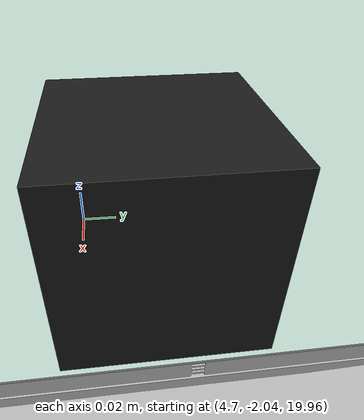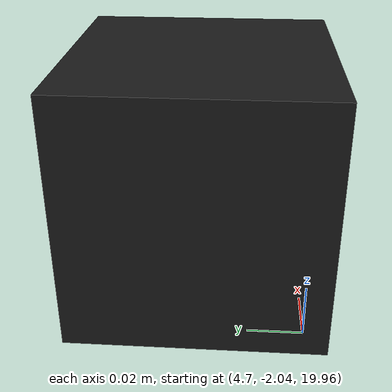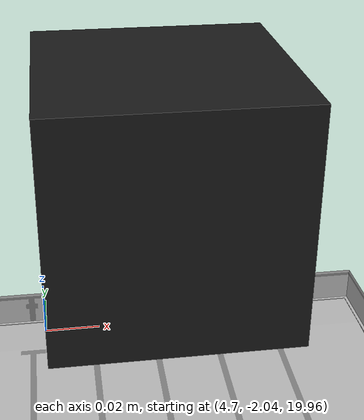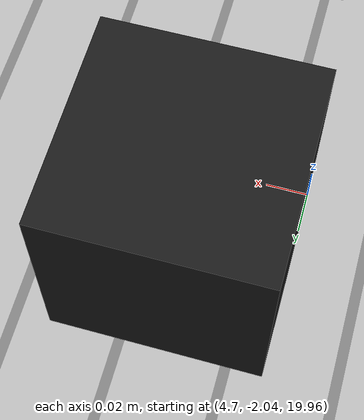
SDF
<sdf version="1.7">
 <world name="default">
  <light name="sun" type="directional">
   <cast_shadows>0</cast_shadows>
   <pose>0 0 10 0 -0 0</pose>
   <diffuse>0.8 0.8 0.8 1</diffuse>
   <specular>0.2 0.2 0.2 1</specular>
   <attenuation>
    <range>1000</range>
    <constant>0.9</constant>
    <linear>0.01</linear>
    <quadratic>0.001</quadratic>
   </attenuation>
   <direction>-0.5 0.1 -0.9</direction>
   <spot><inner_angle>0</inner_angle><outer_angle>0</outer_angle><falloff>0</falloff></spot>
  </light>
  <light name="user_point_light_0" type="point">
   <cast_shadows>0</cast_shadows>
   <pose>4 1 1 0 -0 0</pose>
   <diffuse>0.5 0.5 0.5 1</diffuse>
   <specular>0.1 0.1 0.1 1</specular>
   <attenuation>
    <range>20</range>
    <constant>0.5</constant>
    <linear>0.01</linear>
    <quadratic>0.001</quadratic>
   </attenuation>
   <direction>0 0 -1</direction>
  </light>
  <gravity>0 0 -9.8</gravity>
  <magnetic_field>6e-06 2.3e-05 -4.2e-05</magnetic_field>
  <atmosphere type="adiabatic"/>
  <physics type="ode">
   <max_step_size>0.01</max_step_size>
   <real_time_factor>1</real_time_factor>
   <real_time_update_rate>100</real_time_update_rate>
  </physics>
  <spherical_coordinates>
   <surface_model>EARTH_WGS84</surface_model>
   <latitude_deg>0</latitude_deg>
   <longitude_deg>0</longitude_deg>
   <elevation>0</elevation>
   <heading_deg>0</heading_deg>
  </spherical_coordinates>
  <model name="singapore_pool">
   <static>1</static>
   <pose>4.53158 2.81103 -2 0 -0 0</pose>
   <link name="singapore_pool">
    <collision name="singapore_pool_col">
     <geometry><mesh><uri>model://pool/meshes/pool.dae</uri></mesh></geometry>
    </collision>
    <visual name="singapore_pool_vis">
     <geometry><mesh><uri>model://pool/meshes/pool.dae</uri></mesh></geometry>
    </visual>
   </link>
  </model>
  <scene>
   <shadows>0</shadows>
   <grid>false</grid>
   <origin_visual>false</origin_visual>
   <ambient>0.4 0.4 0.4 1</ambient>
   <background>0.7 0.7 0.7 1</background>
  </scene>
  <model name="pool_camera">
   <static>true</static>
   <pose>4.75 -2 20 0 1.5708 0</pose>
   <link name="pool_camera_link">
    <visual name="camera_visual">
     <geometry><box><size>0.1 0.1 0.1</size></box></geometry>
     <material><ambient>0.1 0.1 0.1 1</ambient><diffuse>0.1 0.1 0.1 1</diffuse></material>
    </visual>
    <sensor name="camera_sensor" type="camera">
     <update_rate>10.0</update_rate>
     <camera name="pool_camera">
      <horizontal_fov>1.36136</horizontal_fov>
      <image><width>640</width><height>480</height><format>B8G8R8</format></image>
      <clip><near>0.02</near><far>300</far></clip>
      <noise><type>gaussian</type><mean>0.0</mean><stddev>0.007</stddev></noise>
     </camera>
     <plugin name="camera_controller" filename="libgazebo_ros_camera.so">
      <alwaysOn>true</alwaysOn>
      <updateRate>10.0</updateRate>
      <cameraName>pool_camera</cameraName>
      <imageTopicName>image_raw</imageTopicName>
      <cameraInfoTopicName>camera_info</cameraInfoTopicName>
      <frameName>pool_camera_link</frameName>
      <hackBaseline>0.07</hackBaseline>
      <distortionK1>0.0</distortionK1>
      <distortionK2>0.0</distortionK2>
      <distortionK3>0.0</distortionK3>
      <distortionT1>0.0</distortionT1>
      <distortionT2>0.0</distortionT2>
     </plugin>
    </sensor>
   </link>
  </model>
 </world>
</sdf>
